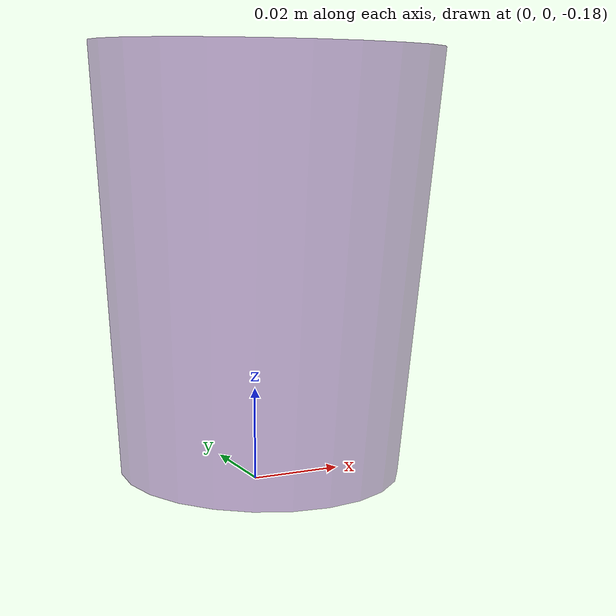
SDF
<?xml version="1.0" ?>
<sdf version="1.4">
  <model name="cup_glass_new">
    <link name="link">
      <inertial>
        <pose>0 0 0.06 0 0 0</pose>
        <mass>0.390</mass>
        <inertia>
          <ixx>0.00055575</ixx>
          <ixy>0</ixy>
          <ixz>0</ixz>
          <iyy>0.00055575</iyy>
          <iyz>0</iyz>
          <izz>0.0001755</izz>
        </inertia>
      </inertial>
      <collision name="collision">
        <pose>0.003937 0.0047244 -0.18 0 0 0</pose>
        <geometry>
          <mesh>
            <uri>model://cup_glass/meshes/cup_glass.dae</uri>
          </mesh>
        </geometry>
        <surface>
          <friction>
            <ode>
              <mu>1.0</mu>
              <mu2>1.0</mu2>
            </ode>
          </friction>
          <contact>
            <ode>
              <kp>10000000.0</kp>
              <kd>1.0</kd>
              <min_depth>0.001</min_depth>
              <max_vel>0.1</max_vel>
            </ode>
          </contact>
        </surface>
      </collision>
      <visual name="visual">
        <pose>0.003937 0.0047244 -0.18 0 0 0</pose>
        <geometry>
          <mesh>
            <uri>model://cup_glass/meshes/cup_glass.dae</uri>
          </mesh>
        </geometry>
        <material>
          <lighting>1</lighting>
          <ambient>0.325 0.023 0.513 1</ambient>
          <diffuse>0.325 0.023 0.513 1</diffuse>
          <specular>0.01 0.01 0.01 1</specular>
          <emissive>0 0 0 1</emissive>
          <shader type='vertex'>
            <normal_map>__default__</normal_map>
          </shader>
        </material>
        <cast_shadows>1</cast_shadows>
        <transparency>0.6</transparency>
      </visual>
    </link>
  </model>
</sdf>
